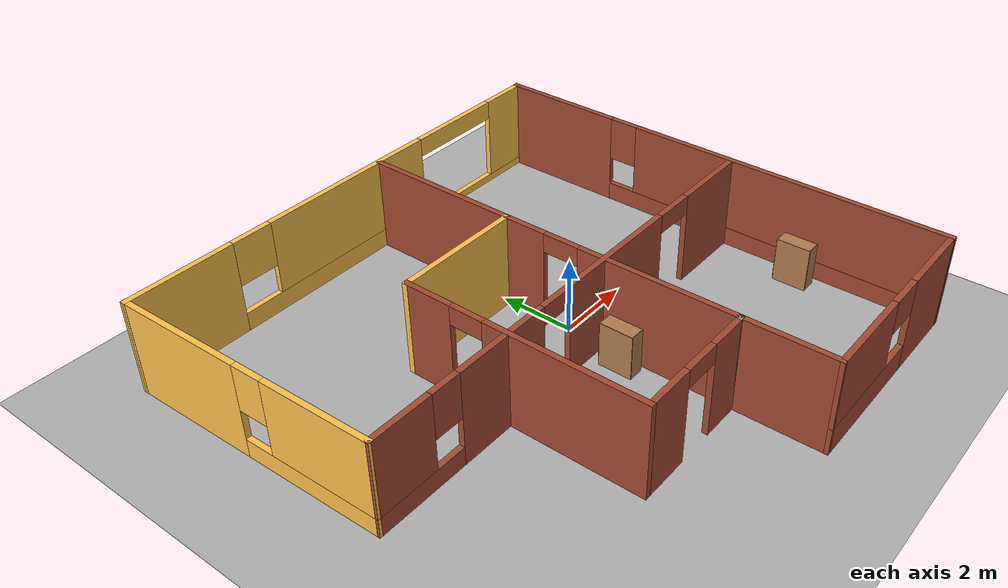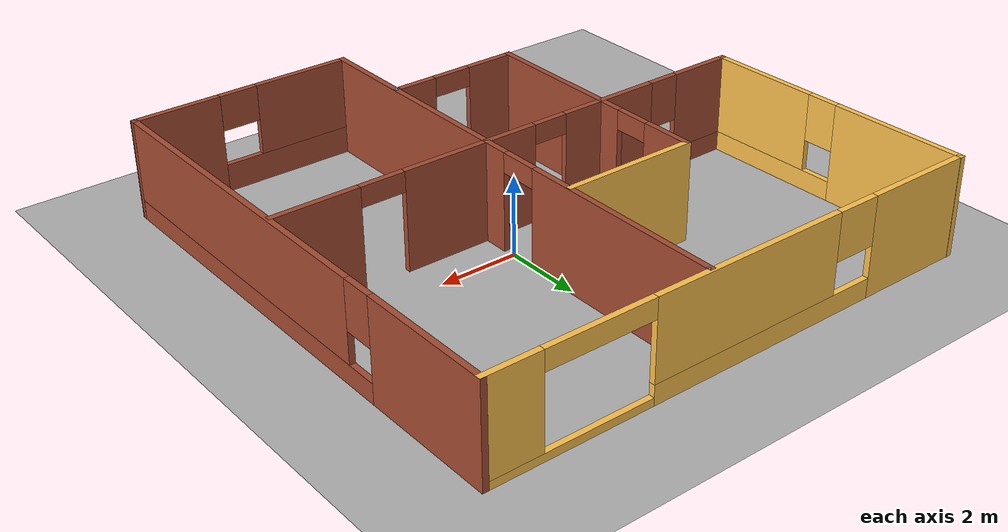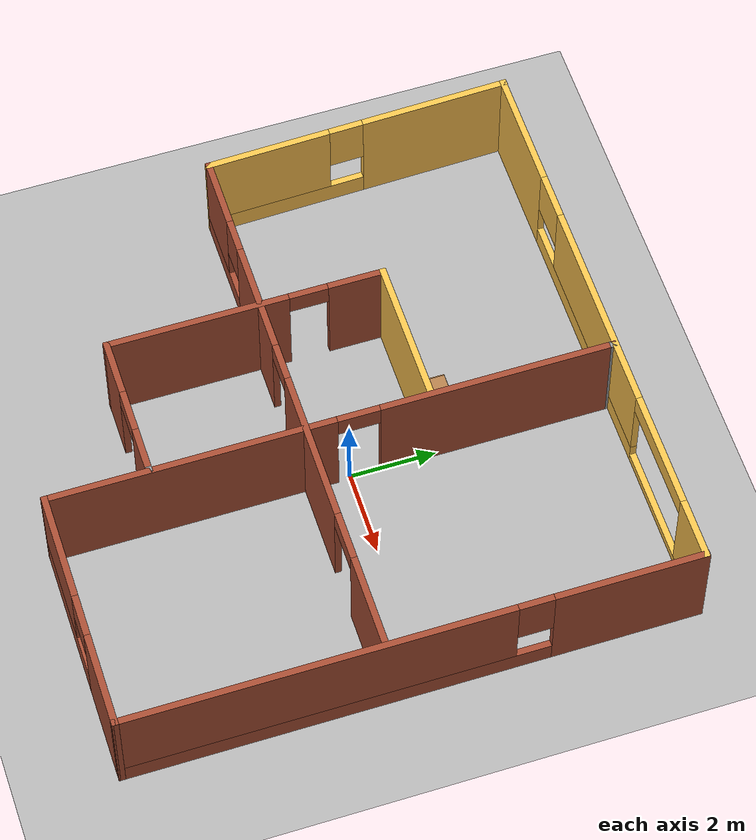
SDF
<sdf version="1.9">
 <world name="default">
  <gravity>0 0 -9.8</gravity>
  <magnetic_field>6e-06 2.3e-05 -4.2e-05</magnetic_field>
  <atmosphere type="adiabatic"/>
  <physics type="ode">
   <max_step_size>0.001</max_step_size>
   <real_time_factor>1</real_time_factor>
   <real_time_update_rate>1000</real_time_update_rate>
  </physics>
  <scene><ambient>0.4 0.4 0.4 1</ambient><background>0.7 0.7 0.7 1</background><shadows>true</shadows></scene>
  <model name="flat">
   <pose>-0.980732 -0.346466 0 0 -0 0</pose>
   <link name="Wall_0">
    <pose>0.000732 6.46037 0 0 -0 0</pose>
    <visual name="Wall_0_Visual_0">
     <pose>-5.1833 0 1.25 0 -0 0</pose>
     <geometry><box><size>2.8834 0.15 2.5</size></box></geometry>
     <material>
      <script><uri>file://media/materials/scripts/gazebo.material</uri><name>Gazebo/Grey</name></script>
      <ambient>1 0.764706 0.305882 1</ambient>
     </material>
     <meta><layer>0</layer></meta>
    </visual>
    <collision name="Wall_0_Collision_0">
     <geometry><box><size>2.8834 0.15 2.5</size></box></geometry>
     <pose>-5.1833 0 1.25 0 -0 0</pose>
    </collision>
    <visual name="Wall_0_Visual_1">
     <pose>-0.642044 0 0.25 0 -0 0</pose>
     <geometry><box><size>6.19911 0.15 0.5</size></box></geometry>
     <material>
      <script><uri>file://media/materials/scripts/gazebo.material</uri><name>Gazebo/Grey</name></script>
      <ambient>1 0.764706 0.305882 1</ambient>
     </material>
     <meta><layer>0</layer></meta>
    </visual>
    <collision name="Wall_0_Collision_1">
     <geometry><box><size>6.19911 0.15 0.5</size></box></geometry>
     <pose>-0.642044 0 0.25 0 -0 0</pose>
    </collision>
    <visual name="Wall_0_Visual_2">
     <pose>4.54125 0 0.1 0 -0 0</pose>
     <geometry><box><size>4.16749 0.15 0.2</size></box></geometry>
     <material>
      <script><uri>file://media/materials/scripts/gazebo.material</uri><name>Gazebo/Grey</name></script>
      <ambient>1 0.764706 0.305882 1</ambient>
     </material>
     <meta><layer>0</layer></meta>
    </visual>
    <collision name="Wall_0_Collision_2">
     <geometry><box><size>4.16749 0.15 0.2</size></box></geometry>
     <pose>4.54125 0 0.1 0 -0 0</pose>
    </collision>
    <visual name="Wall_0_Visual_3">
     <pose>5.90647 0 1.35 0 -0 0</pose>
     <geometry><box><size>1.43706 0.15 2.3</size></box></geometry>
     <material>
      <script><uri>file://media/materials/scripts/gazebo.material</uri><name>Gazebo/Grey</name></script>
      <ambient>1 0.764706 0.305882 1</ambient>
     </material>
     <meta><layer>0</layer></meta>
    </visual>
    <collision name="Wall_0_Collision_3">
     <geometry><box><size>1.43706 0.15 2.3</size></box></geometry>
     <pose>5.90647 0 1.35 0 -0 0</pose>
    </collision>
    <visual name="Wall_0_Visual_4">
     <pose>-0.08987 0 1.5 0 -0 0</pose>
     <geometry><box><size>5.09476 0.15 2</size></box></geometry>
     <material>
      <script><uri>file://media/materials/scripts/gazebo.material</uri><name>Gazebo/Grey</name></script>
      <ambient>1 0.764706 0.305882 1</ambient>
     </material>
     <meta><layer>0</layer></meta>
    </visual>
    <collision name="Wall_0_Collision_4">
     <geometry><box><size>5.09476 0.15 2</size></box></geometry>
     <pose>-0.08987 0 1.5 0 -0 0</pose>
    </collision>
    <visual name="Wall_0_Visual_5">
     <pose>-3.18942 0 1.9 0 -0 0</pose>
     <geometry><box><size>1.10435 0.15 1.2</size></box></geometry>
     <material>
      <script><uri>file://media/materials/scripts/gazebo.material</uri><name>Gazebo/Grey</name></script>
      <ambient>1 0.764706 0.305882 1</ambient>
     </material>
     <meta><layer>0</layer></meta>
    </visual>
    <collision name="Wall_0_Collision_5">
     <geometry><box><size>1.10435 0.15 1.2</size></box></geometry>
     <pose>-3.18942 0 1.9 0 -0 0</pose>
    </collision>
    <visual name="Wall_0_Visual_6">
     <pose>3.82273 0 2.25 0 -0 0</pose>
     <geometry><box><size>2.73043 0.15 0.5</size></box></geometry>
     <material>
      <script><uri>file://media/materials/scripts/gazebo.material</uri><name>Gazebo/Grey</name></script>
      <ambient>1 0.764706 0.305882 1</ambient>
     </material>
     <meta><layer>0</layer></meta>
    </visual>
    <collision name="Wall_0_Collision_6">
     <geometry><box><size>2.73043 0.15 0.5</size></box></geometry>
     <pose>3.82273 0 2.25 0 -0 0</pose>
    </collision>
    <inertial>
     <mass>1</mass>
     <inertia><ixx>1</ixx><ixy>0</ixy><ixz>0</ixz><iyy>1</iyy><iyz>0</iyz><izz>1</izz></inertia>
    </inertial>
   </link>
   <link name="Wall_1">
    <pose>6.55073 -0.000795 0 0 0 -1.5708</pose>
    <visual name="Wall_1_Visual_0">
     <pose>-4.81142 0 1.25 0 -0 0</pose>
     <geometry><box><size>3.46263 0.15 2.5</size></box></geometry>
     <material>
      <script><uri>file://media/materials/scripts/gazebo.material</uri><name>Gazebo/Bricks</name></script>
      <ambient>1 1 1 1</ambient>
     </material>
     <meta><layer>0</layer></meta>
    </visual>
    <collision name="Wall_1_Collision_0">
     <geometry><box><size>3.46263 0.15 2.5</size></box></geometry>
     <pose>-4.81142 0 1.25 0 -0 0</pose>
    </collision>
    <visual name="Wall_1_Visual_1">
     <pose>1.73131 0 0.25 0 -0 0</pose>
     <geometry><box><size>9.62285 0.15 0.5</size></box></geometry>
     <material>
      <script><uri>file://media/materials/scripts/gazebo.material</uri><name>Gazebo/Bricks</name></script>
      <ambient>1 1 1 1</ambient>
     </material>
     <meta><layer>0</layer></meta>
    </visual>
    <collision name="Wall_1_Collision_1">
     <geometry><box><size>9.62285 0.15 0.5</size></box></geometry>
     <pose>1.73131 0 0.25 0 -0 0</pose>
    </collision>
    <visual name="Wall_1_Visual_2">
     <pose>2.13131 0 1.5 0 -0 0</pose>
     <geometry><box><size>8.82285 0.15 2</size></box></geometry>
     <material>
      <script><uri>file://media/materials/scripts/gazebo.material</uri><name>Gazebo/Bricks</name></script>
      <ambient>1 1 1 1</ambient>
     </material>
     <meta><layer>0</layer></meta>
    </visual>
    <collision name="Wall_1_Collision_2">
     <geometry><box><size>8.82285 0.15 2</size></box></geometry>
     <pose>2.13131 0 1.5 0 -0 0</pose>
    </collision>
    <visual name="Wall_1_Visual_3">
     <pose>-2.68011 0 1.9 0 -0 0</pose>
     <geometry><box><size>0.8 0.15 1.2</size></box></geometry>
     <material>
      <script><uri>file://media/materials/scripts/gazebo.material</uri><name>Gazebo/Bricks</name></script>
      <ambient>1 1 1 1</ambient>
     </material>
     <meta><layer>0</layer></meta>
    </visual>
    <collision name="Wall_1_Collision_3">
     <geometry><box><size>0.8 0.15 1.2</size></box></geometry>
     <pose>-2.68011 0 1.9 0 -0 0</pose>
    </collision>
    <inertial>
     <mass>1</mass>
     <inertia><ixx>1</ixx><ixy>0</ixy><ixz>0</ixz><iyy>1</iyy><iyz>0</iyz><izz>1</izz></inertia>
    </inertial>
   </link>
   <link name="Wall_11">
    <collision name="Wall_11_Collision">
     <geometry><box><size>3.5 0.15 2.5</size></box></geometry>
     <pose>0 0 1.25 0 -0 0</pose>
    </collision>
    <visual name="Wall_11_Visual">
     <pose>0 0 1.25 0 -0 0</pose>
     <geometry><box><size>3.5 0.15 2.5</size></box></geometry>
     <material>
      <script><uri>file://media/materials/scripts/gazebo.material</uri><name>Gazebo/Grey</name></script>
      <ambient>1 0.764706 0.305882 1</ambient>
     </material>
     <meta><layer>0</layer></meta>
    </visual>
    <pose>-0.729268 2.22047 0 0 -0 3.14159</pose>
    <inertial>
     <mass>1</mass>
     <inertia><ixx>1</ixx><ixy>0</ixy><ixz>0</ixz><iyy>1</iyy><iyz>0</iyz><izz>1</izz></inertia>
    </inertial>
   </link>
   <link name="Wall_12">
    <pose>-2.40427 -0.954534 0 0 0 -1.5708</pose>
    <visual name="Wall_12_Visual_0">
     <pose>-2.56742 0 1.25 0 -0 0</pose>
     <geometry><box><size>1.36516 0.15 2.5</size></box></geometry>
     <material>
      <script><uri>file://media/materials/scripts/gazebo.material</uri><name>Gazebo/Bricks</name></script>
      <ambient>1 1 1 1</ambient>
     </material>
     <meta><layer>0</layer></meta>
    </visual>
    <collision name="Wall_12_Collision_0">
     <geometry><box><size>1.36516 0.15 2.5</size></box></geometry>
     <pose>-2.56742 0 1.25 0 -0 0</pose>
    </collision>
    <visual name="Wall_12_Visual_1">
     <pose>1.13258 0 1.25 0 -0 0</pose>
     <geometry><box><size>4.23484 0.15 2.5</size></box></geometry>
     <material>
      <script><uri>file://media/materials/scripts/gazebo.material</uri><name>Gazebo/Bricks</name></script>
      <ambient>1 1 1 1</ambient>
     </material>
     <meta><layer>0</layer></meta>
    </visual>
    <collision name="Wall_12_Collision_1">
     <geometry><box><size>4.23484 0.15 2.5</size></box></geometry>
     <pose>1.13258 0 1.25 0 -0 0</pose>
    </collision>
    <visual name="Wall_12_Visual_2">
     <pose>-1.43484 0 2.25 0 -0 0</pose>
     <geometry><box><size>0.9 0.15 0.5</size></box></geometry>
     <material>
      <script><uri>file://media/materials/scripts/gazebo.material</uri><name>Gazebo/Bricks</name></script>
      <ambient>1 1 1 1</ambient>
     </material>
     <meta><layer>0</layer></meta>
    </visual>
    <collision name="Wall_12_Collision_2">
     <geometry><box><size>0.9 0.15 0.5</size></box></geometry>
     <pose>-1.43484 0 2.25 0 -0 0</pose>
    </collision>
    <inertial>
     <mass>1</mass>
     <inertia><ixx>1</ixx><ixy>0</ixy><ixz>0</ixz><iyy>1</iyy><iyz>0</iyz><izz>1</izz></inertia>
    </inertial>
   </link>
   <link name="Wall_13">
    <pose>-0.729268 -4.12953 0 0 -0 0</pose>
    <visual name="Wall_13_Visual_0">
     <pose>-1.07574 0 1.25 0 -0 0</pose>
     <geometry><box><size>1.34852 0.15 2.5</size></box></geometry>
     <material>
      <script><uri>file://media/materials/scripts/gazebo.material</uri><name>Gazebo/Bricks</name></script>
      <ambient>1 1 1 1</ambient>
     </material>
     <meta><layer>0</layer></meta>
    </visual>
    <collision name="Wall_13_Collision_0">
     <geometry><box><size>1.34852 0.15 2.5</size></box></geometry>
     <pose>-1.07574 0 1.25 0 -0 0</pose>
    </collision>
    <visual name="Wall_13_Visual_1">
     <pose>1.17716 0 1.25 0 -0 0</pose>
     <geometry><box><size>1.14568 0.15 2.5</size></box></geometry>
     <material>
      <script><uri>file://media/materials/scripts/gazebo.material</uri><name>Gazebo/Bricks</name></script>
      <ambient>1 1 1 1</ambient>
     </material>
     <meta><layer>0</layer></meta>
    </visual>
    <collision name="Wall_13_Collision_1">
     <geometry><box><size>1.14568 0.15 2.5</size></box></geometry>
     <pose>1.17716 0 1.25 0 -0 0</pose>
    </collision>
    <visual name="Wall_13_Visual_2">
     <pose>0.10142 0 2.25 0 -0 0</pose>
     <geometry><box><size>1.0058 0.15 0.5</size></box></geometry>
     <material>
      <script><uri>file://media/materials/scripts/gazebo.material</uri><name>Gazebo/Bricks</name></script>
      <ambient>1 1 1 1</ambient>
     </material>
     <meta><layer>0</layer></meta>
    </visual>
    <collision name="Wall_13_Collision_2">
     <geometry><box><size>1.0058 0.15 0.5</size></box></geometry>
     <pose>0.10142 0 2.25 0 -0 0</pose>
    </collision>
    <inertial>
     <mass>1</mass>
     <inertia><ixx>1</ixx><ixy>0</ixy><ixz>0</ixz><iyy>1</iyy><iyz>0</iyz><izz>1</izz></inertia>
    </inertial>
   </link>
   <link name="Wall_14">
    <collision name="Wall_14_Collision">
     <geometry><box><size>0.15 0.15 2.5</size></box></geometry>
     <pose>0 0 1.25 0 -0 0</pose>
    </collision>
    <visual name="Wall_14_Visual">
     <pose>0 0 1.25 0 -0 0</pose>
     <geometry><box><size>0.15 0.15 2.5</size></box></geometry>
     <material>
      <script><uri>file://media/materials/scripts/gazebo.material</uri><name>Gazebo/Grey</name></script>
      <ambient>1 1 1 1</ambient>
     </material>
     <meta><layer>0</layer></meta>
    </visual>
    <pose>0.945732 -4.12953 0 0 -0 0</pose>
    <inertial>
     <mass>1</mass>
     <inertia><ixx>1</ixx><ixy>0</ixy><ixz>0</ixz><iyy>1</iyy><iyz>0</iyz><izz>1</izz></inertia>
    </inertial>
   </link>
   <link name="Wall_2">
    <pose>3.76223 -6.45703 0 0 -0 3.13747</pose>
    <visual name="Wall_2_Visual_0">
     <pose>-1.75694 0 1.25 0 -0 0</pose>
     <geometry><box><size>2.21342 0.15 2.5</size></box></geometry>
     <material>
      <script><uri>file://media/materials/scripts/gazebo.material</uri><name>Gazebo/Bricks</name></script>
      <ambient>1 1 1 1</ambient>
     </material>
     <meta><layer>0</layer></meta>
    </visual>
    <collision name="Wall_2_Collision_0">
     <geometry><box><size>2.21342 0.15 2.5</size></box></geometry>
     <pose>-1.75694 0 1.25 0 -0 0</pose>
    </collision>
    <visual name="Wall_2_Visual_1">
     <pose>1.10671 0 0.35 0 -0 0</pose>
     <geometry><box><size>3.51388 0.15 0.7</size></box></geometry>
     <material>
      <script><uri>file://media/materials/scripts/gazebo.material</uri><name>Gazebo/Bricks</name></script>
      <ambient>1 1 1 1</ambient>
     </material>
     <meta><layer>0</layer></meta>
    </visual>
    <collision name="Wall_2_Collision_1">
     <geometry><box><size>3.51388 0.15 0.7</size></box></geometry>
     <pose>1.10671 0 0.35 0 -0 0</pose>
    </collision>
    <visual name="Wall_2_Visual_2">
     <pose>1.59671 0 1.6 0 -0 0</pose>
     <geometry><box><size>2.53388 0.15 1.8</size></box></geometry>
     <material>
      <script><uri>file://media/materials/scripts/gazebo.material</uri><name>Gazebo/Bricks</name></script>
      <ambient>1 1 1 1</ambient>
     </material>
     <meta><layer>0</layer></meta>
    </visual>
    <collision name="Wall_2_Collision_2">
     <geometry><box><size>2.53388 0.15 1.8</size></box></geometry>
     <pose>1.59671 0 1.6 0 -0 0</pose>
    </collision>
    <visual name="Wall_2_Visual_3">
     <pose>-0.160227 0 2.05 0 -0 0</pose>
     <geometry><box><size>0.98 0.15 0.9</size></box></geometry>
     <material>
      <script><uri>file://media/materials/scripts/gazebo.material</uri><name>Gazebo/Bricks</name></script>
      <ambient>1 1 1 1</ambient>
     </material>
     <meta><layer>0</layer></meta>
    </visual>
    <collision name="Wall_2_Collision_3">
     <geometry><box><size>0.98 0.15 0.9</size></box></geometry>
     <pose>-0.160227 0 2.05 0 -0 0</pose>
    </collision>
    <inertial>
     <mass>1</mass>
     <inertia><ixx>1</ixx><ixy>0</ixy><ixz>0</ixz><iyy>1</iyy><iyz>0</iyz><izz>1</izz></inertia>
    </inertial>
   </link>
   <link name="Wall_3">
    <pose>0.973732 -0.020534 0 0 -0 1.5708</pose>
    <visual name="Wall_3_Visual_0">
     <pose>-3.20115 0 1.25 0 -0 0</pose>
     <geometry><box><size>6.59769 0.15 2.5</size></box></geometry>
     <material>
      <script><uri>file://media/materials/scripts/gazebo.material</uri><name>Gazebo/Bricks</name></script>
      <ambient>1 1 1 1</ambient>
     </material>
     <meta><layer>0</layer></meta>
    </visual>
    <collision name="Wall_3_Collision_0">
     <geometry><box><size>6.59769 0.15 2.5</size></box></geometry>
     <pose>-3.20115 0 1.25 0 -0 0</pose>
    </collision>
    <visual name="Wall_3_Visual_1">
     <pose>3.78687 0 1.25 0 -0 0</pose>
     <geometry><box><size>5.42626 0.15 2.5</size></box></geometry>
     <material>
      <script><uri>file://media/materials/scripts/gazebo.material</uri><name>Gazebo/Bricks</name></script>
      <ambient>1 1 1 1</ambient>
     </material>
     <meta><layer>0</layer></meta>
    </visual>
    <collision name="Wall_3_Collision_1">
     <geometry><box><size>5.42626 0.15 2.5</size></box></geometry>
     <pose>3.78687 0 1.25 0 -0 0</pose>
    </collision>
    <visual name="Wall_3_Visual_2">
     <pose>0.585717 0 2.25 0 -0 0</pose>
     <geometry><box><size>0.976044 0.15 0.5</size></box></geometry>
     <material>
      <script><uri>file://media/materials/scripts/gazebo.material</uri><name>Gazebo/Bricks</name></script>
      <ambient>1 1 1 1</ambient>
     </material>
     <meta><layer>0</layer></meta>
    </visual>
    <collision name="Wall_3_Collision_2">
     <geometry><box><size>0.976044 0.15 0.5</size></box></geometry>
     <pose>0.585717 0 2.25 0 -0 0</pose>
    </collision>
    <inertial>
     <mass>1</mass>
     <inertia><ixx>1</ixx><ixy>0</ixy><ixz>0</ixz><iyy>1</iyy><iyz>0</iyz><izz>1</izz></inertia>
    </inertial>
   </link>
   <link name="Wall_4">
    <collision name="Wall_4_Collision">
     <geometry><box><size>0.15 0.15 2.5</size></box></geometry>
     <pose>0 0 1.25 0 -0 0</pose>
    </collision>
    <visual name="Wall_4_Visual">
     <pose>0 0 1.25 0 -0 0</pose>
     <geometry><box><size>0.15 0.15 2.5</size></box></geometry>
     <material>
      <script><uri>file://media/materials/scripts/gazebo.material</uri><name>Gazebo/Grey</name></script>
      <ambient>1 1 1 1</ambient>
     </material>
     <meta><layer>0</layer></meta>
    </visual>
    <pose>0.973732 6.40447 0 0 -0 0</pose>
    <inertial>
     <mass>1</mass>
     <inertia><ixx>1</ixx><ixy>0</ixy><ixz>0</ixz><iyy>1</iyy><iyz>0</iyz><izz>1</izz></inertia>
    </inertial>
   </link>
   <link name="Wall_6">
    <pose>0.057732 -0.624534 0 0 -0 3.14159</pose>
    <visual name="Wall_6_Visual_0">
     <pose>-5.39693 0 1.25 0 -0 0</pose>
     <geometry><box><size>2.20614 0.15 2.5</size></box></geometry>
     <material>
      <script><uri>file://media/materials/scripts/gazebo.material</uri><name>Gazebo/Bricks</name></script>
      <ambient>0.760784 0.662745 0.627451 1</ambient>
     </material>
     <meta><layer>0</layer></meta>
    </visual>
    <collision name="Wall_6_Collision_0">
     <geometry><box><size>2.20614 0.15 2.5</size></box></geometry>
     <pose>-5.39693 0 1.25 0 -0 0</pose>
    </collision>
    <visual name="Wall_6_Visual_1">
     <pose>-1.36863 0 1.25 0 -0 0</pose>
     <geometry><box><size>3.59419 0.15 2.5</size></box></geometry>
     <material>
      <script><uri>file://media/materials/scripts/gazebo.material</uri><name>Gazebo/Bricks</name></script>
      <ambient>0.760784 0.662745 0.627451 1</ambient>
     </material>
     <meta><layer>0</layer></meta>
    </visual>
    <collision name="Wall_6_Collision_1">
     <geometry><box><size>3.59419 0.15 2.5</size></box></geometry>
     <pose>-1.36863 0 1.25 0 -0 0</pose>
    </collision>
    <visual name="Wall_6_Visual_2">
     <pose>2.6662 0 1.25 0 -0 0</pose>
     <geometry><box><size>2.67548 0.15 2.5</size></box></geometry>
     <material>
      <script><uri>file://media/materials/scripts/gazebo.material</uri><name>Gazebo/Bricks</name></script>
      <ambient>0.760784 0.662745 0.627451 1</ambient>
     </material>
     <meta><layer>0</layer></meta>
    </visual>
    <collision name="Wall_6_Collision_2">
     <geometry><box><size>2.67548 0.15 2.5</size></box></geometry>
     <pose>2.6662 0 1.25 0 -0 0</pose>
    </collision>
    <visual name="Wall_6_Visual_3">
     <pose>5.25197 0 0.25 0 -0 0</pose>
     <geometry><box><size>2.49606 0.15 0.5</size></box></geometry>
     <material>
      <script><uri>file://media/materials/scripts/gazebo.material</uri><name>Gazebo/Bricks</name></script>
      <ambient>0.760784 0.662745 0.627451 1</ambient>
     </material>
     <meta><layer>0</layer></meta>
    </visual>
    <collision name="Wall_6_Collision_3">
     <geometry><box><size>2.49606 0.15 0.5</size></box></geometry>
     <pose>5.25197 0 0.25 0 -0 0</pose>
    </collision>
    <visual name="Wall_6_Visual_4">
     <pose>5.65197 0 1.5 0 -0 0</pose>
     <geometry><box><size>1.69606 0.15 2</size></box></geometry>
     <material>
      <script><uri>file://media/materials/scripts/gazebo.material</uri><name>Gazebo/Bricks</name></script>
      <ambient>0.760784 0.662745 0.627451 1</ambient>
     </material>
     <meta><layer>0</layer></meta>
    </visual>
    <collision name="Wall_6_Collision_4">
     <geometry><box><size>1.69606 0.15 2</size></box></geometry>
     <pose>5.65197 0 1.5 0 -0 0</pose>
    </collision>
    <visual name="Wall_6_Visual_5">
     <pose>4.40394 0 1.9 0 -0 0</pose>
     <geometry><box><size>0.8 0.15 1.2</size></box></geometry>
     <material>
      <script><uri>file://media/materials/scripts/gazebo.material</uri><name>Gazebo/Bricks</name></script>
      <ambient>0.760784 0.662745 0.627451 1</ambient>
     </material>
     <meta><layer>0</layer></meta>
    </visual>
    <collision name="Wall_6_Collision_5">
     <geometry><box><size>0.8 0.15 1.2</size></box></geometry>
     <pose>4.40394 0 1.9 0 -0 0</pose>
    </collision>
    <visual name="Wall_6_Visual_6">
     <pose>-3.72979 0 2.25 0 -0 0</pose>
     <geometry><box><size>1.12813 0.15 0.5</size></box></geometry>
     <material>
      <script><uri>file://media/materials/scripts/gazebo.material</uri><name>Gazebo/Bricks</name></script>
      <ambient>0.760784 0.662745 0.627451 1</ambient>
     </material>
     <meta><layer>0</layer></meta>
    </visual>
    <collision name="Wall_6_Collision_6">
     <geometry><box><size>1.12813 0.15 0.5</size></box></geometry>
     <pose>-3.72979 0 2.25 0 -0 0</pose>
    </collision>
    <visual name="Wall_6_Visual_7">
     <pose>0.87846 0 2.25 0 -0 0</pose>
     <geometry><box><size>0.9 0.15 0.5</size></box></geometry>
     <material>
      <script><uri>file://media/materials/scripts/gazebo.material</uri><name>Gazebo/Bricks</name></script>
      <ambient>0.760784 0.662745 0.627451 1</ambient>
     </material>
     <meta><layer>0</layer></meta>
    </visual>
    <collision name="Wall_6_Collision_7">
     <geometry><box><size>0.9 0.15 0.5</size></box></geometry>
     <pose>0.87846 0 2.25 0 -0 0</pose>
    </collision>
    <inertial>
     <mass>1</mass>
     <inertia><ixx>1</ixx><ixy>0</ixy><ixz>0</ixz><iyy>1</iyy><iyz>0</iyz><izz>1</izz></inertia>
    </inertial>
   </link>
   <link name="Wall_9">
    <pose>-6.45827 2.92121 0 0 0 -1.54514</pose>
    <visual name="Wall_9_Visual_0">
     <pose>-1.8675 0 1.25 0 -0 0</pose>
     <geometry><box><size>3.50881 0.15 2.5</size></box></geometry>
     <material>
      <script><uri>file://media/materials/scripts/gazebo.material</uri><name>Gazebo/Grey</name></script>
      <ambient>1 0.764706 0.305882 1</ambient>
     </material>
     <meta><layer>0</layer></meta>
    </visual>
    <collision name="Wall_9_Collision_0">
     <geometry><box><size>3.50881 0.15 2.5</size></box></geometry>
     <pose>-1.8675 0 1.25 0 -0 0</pose>
    </collision>
    <visual name="Wall_9_Visual_1">
     <pose>1.7544 0 0.25 0 -0 0</pose>
     <geometry><box><size>3.73501 0.15 0.5</size></box></geometry>
     <material>
      <script><uri>file://media/materials/scripts/gazebo.material</uri><name>Gazebo/Grey</name></script>
      <ambient>1 0.764706 0.305882 1</ambient>
     </material>
     <meta><layer>0</layer></meta>
    </visual>
    <collision name="Wall_9_Collision_1">
     <geometry><box><size>3.73501 0.15 0.5</size></box></geometry>
     <pose>1.7544 0 0.25 0 -0 0</pose>
    </collision>
    <visual name="Wall_9_Visual_2">
     <pose>2.1544 0 1.5 0 -0 0</pose>
     <geometry><box><size>2.93501 0.15 2</size></box></geometry>
     <material>
      <script><uri>file://media/materials/scripts/gazebo.material</uri><name>Gazebo/Grey</name></script>
      <ambient>1 0.764706 0.305882 1</ambient>
     </material>
     <meta><layer>0</layer></meta>
    </visual>
    <collision name="Wall_9_Collision_2">
     <geometry><box><size>2.93501 0.15 2</size></box></geometry>
     <pose>2.1544 0 1.5 0 -0 0</pose>
    </collision>
    <visual name="Wall_9_Visual_3">
     <pose>0.286899 0 1.9 0 -0 0</pose>
     <geometry><box><size>0.8 0.15 1.2</size></box></geometry>
     <material>
      <script><uri>file://media/materials/scripts/gazebo.material</uri><name>Gazebo/Grey</name></script>
      <ambient>1 0.764706 0.305882 1</ambient>
     </material>
     <meta><layer>0</layer></meta>
    </visual>
    <collision name="Wall_9_Collision_3">
     <geometry><box><size>0.8 0.15 1.2</size></box></geometry>
     <pose>0.286899 0 1.9 0 -0 0</pose>
    </collision>
    <inertial>
     <mass>1</mass>
     <inertia><ixx>1</ixx><ixy>0</ixy><ixz>0</ixz><iyy>1</iyy><iyz>0</iyz><izz>1</izz></inertia>
    </inertial>
   </link>
   <static>true</static>
  </model>
  <model name="Bookshelf">
   <static>true</static>
   <link name="link">
    <inertial>
     <mass>1</mass>
     <inertia><ixx>1</ixx><ixy>0</ixy><ixz>0</ixz><iyy>1</iyy><iyz>0</iyz><izz>1</izz></inertia>
    </inertial>
    <collision name="back">
     <pose>0 0.005 0.6 0 0 0</pose>
     <geometry><box><size>0.9 0.01 1.2</size></box></geometry>
    </collision>
    <visual name="visual1">
     <pose>0 0.005 0.6 0 0 0</pose>
     <geometry><box><size>0.9 0.01 1.2</size></box></geometry>
     <material>
      <diffuse>1 1 1 1</diffuse>
      <script><uri>file://media/materials/scripts/gazebo.material</uri><name>Gazebo/Wood</name></script>
      <pbr>
       <metal>
        <albedo_map>https://fuel.gazebosim.org/1.0/openrobotics/models/bookshelf/4/files/bookshelf_diffuse.jpg</albedo_map>
       </metal>
      </pbr>
     </material>
    </visual>
    <collision name="left_side">
     <pose>0.45 -0.195 0.6 0 0 0</pose>
     <geometry><box><size>0.02 0.4 1.2</size></box></geometry>
    </collision>
    <visual name="visual2">
     <pose>0.45 -0.195 0.6 0 0 0</pose>
     <geometry><box><size>0.02 0.4 1.2</size></box></geometry>
     <material>
      <diffuse>1 1 1 1</diffuse>
      <script><uri>file://media/materials/scripts/gazebo.material</uri><name>Gazebo/Wood</name></script>
      <pbr>
       <metal>
        <albedo_map>https://fuel.gazebosim.org/1.0/openrobotics/models/bookshelf/4/files/bookshelf_diffuse.jpg</albedo_map>
       </metal>
      </pbr>
     </material>
    </visual>
    <collision name="right_side">
     <pose>-0.45 -0.195 0.6 0 0 0</pose>
     <geometry><box><size>0.02 0.4 1.2</size></box></geometry>
    </collision>
    <visual name="visual3">
     <pose>-0.45 -0.195 0.6 0 0 0</pose>
     <geometry><box><size>0.02 0.4 1.2</size></box></geometry>
     <material>
      <diffuse>1 1 1 1</diffuse>
      <script><uri>file://media/materials/scripts/gazebo.material</uri><name>Gazebo/Wood</name></script>
      <pbr>
       <metal>
        <albedo_map>https://fuel.gazebosim.org/1.0/openrobotics/models/bookshelf/4/files/bookshelf_diffuse.jpg</albedo_map>
       </metal>
      </pbr>
     </material>
    </visual>
    <collision name="bottom">
     <pose>0 -0.195 0.03 0 0 0</pose>
     <geometry><box><size>0.88 0.4 0.06</size></box></geometry>
    </collision>
    <visual name="visual4">
     <pose>0 -0.195 0.03 0 0 0</pose>
     <geometry><box><size>0.88 0.4 0.06</size></box></geometry>
     <material>
      <diffuse>1 1 1 1</diffuse>
      <script><uri>file://media/materials/scripts/gazebo.material</uri><name>Gazebo/Wood</name></script>
      <pbr>
       <metal>
        <albedo_map>https://fuel.gazebosim.org/1.0/openrobotics/models/bookshelf/4/files/bookshelf_diffuse.jpg</albedo_map>
       </metal>
      </pbr>
     </material>
    </visual>
    <collision name="top">
     <pose>0 -0.195 1.19 0 0 0</pose>
     <geometry><box><size>0.88 0.4 0.02</size></box></geometry>
    </collision>
    <visual name="visual5">
     <pose>0 -0.195 1.19 0 0 0</pose>
     <geometry><box><size>0.88 0.4 0.02</size></box></geometry>
     <material>
      <diffuse>1 1 1 1</diffuse>
      <script><uri>file://media/materials/scripts/gazebo.material</uri><name>Gazebo/Wood</name></script>
      <pbr>
       <metal>
        <albedo_map>https://fuel.gazebosim.org/1.0/openrobotics/models/bookshelf/4/files/bookshelf_diffuse.jpg</albedo_map>
       </metal>
      </pbr>
     </material>
    </visual>
    <collision name="low_shelf">
     <pose>0 -0.195 0.43 0 0 0</pose>
     <geometry><box><size>0.88 0.4 0.02</size></box></geometry>
    </collision>
    <visual name="visual6">
     <pose>0 -0.195 0.43 0 0 0</pose>
     <geometry><box><size>0.88 0.4 0.02</size></box></geometry>
     <material>
      <diffuse>1 1 1 1</diffuse>
      <script><uri>file://media/materials/scripts/gazebo.material</uri><name>Gazebo/Wood</name></script>
      <pbr>
       <metal>
        <albedo_map>https://fuel.gazebosim.org/1.0/openrobotics/models/bookshelf/4/files/bookshelf_diffuse.jpg</albedo_map>
       </metal>
      </pbr>
     </material>
    </visual>
    <collision name="high_shelf">
     <pose>0 -0.195 0.8 0 0 0</pose>
     <geometry><box><size>0.88 0.4 0.02</size></box></geometry>
    </collision>
    <visual name="visual7">
     <pose>0 -0.195 0.8 0 0 0</pose>
     <geometry><box><size>0.88 0.4 0.02</size></box></geometry>
     <material>
      <diffuse>1 1 1 1</diffuse>
      <script><uri>file://media/materials/scripts/gazebo.material</uri><name>Gazebo/Wood</name></script>
      <pbr>
       <metal>
        <albedo_map>https://fuel.gazebosim.org/1.0/openrobotics/models/bookshelf/4/files/bookshelf_diffuse.jpg</albedo_map>
       </metal>
      </pbr>
     </material>
    </visual>
   </link>
   <pose>-0.615323 -1.77008 0 0 -0 1.5708</pose>
  </model>
  <model name="Bookshelf_0">
   <static>true</static>
   <link name="link">
    <inertial>
     <mass>1</mass>
     <inertia><ixx>1</ixx><ixy>0</ixy><ixz>0</ixz><iyy>1</iyy><iyz>0</iyz><izz>1</izz></inertia>
    </inertial>
    <collision name="back">
     <pose>0 0.005 0.6 0 0 0</pose>
     <geometry><box><size>0.9 0.01 1.2</size></box></geometry>
    </collision>
    <visual name="visual1">
     <pose>0 0.005 0.6 0 0 0</pose>
     <geometry><box><size>0.9 0.01 1.2</size></box></geometry>
     <material>
      <diffuse>1 1 1 1</diffuse>
      <script><uri>file://media/materials/scripts/gazebo.material</uri><name>Gazebo/Wood</name></script>
      <pbr>
       <metal>
        <albedo_map>https://fuel.gazebosim.org/1.0/openrobotics/models/bookshelf/4/files/bookshelf_diffuse.jpg</albedo_map>
       </metal>
      </pbr>
     </material>
    </visual>
    <collision name="left_side">
     <pose>0.45 -0.195 0.6 0 0 0</pose>
     <geometry><box><size>0.02 0.4 1.2</size></box></geometry>
    </collision>
    <visual name="visual2">
     <pose>0.45 -0.195 0.6 0 0 0</pose>
     <geometry><box><size>0.02 0.4 1.2</size></box></geometry>
     <material>
      <diffuse>1 1 1 1</diffuse>
      <script><uri>file://media/materials/scripts/gazebo.material</uri><name>Gazebo/Wood</name></script>
      <pbr>
       <metal>
        <albedo_map>https://fuel.gazebosim.org/1.0/openrobotics/models/bookshelf/4/files/bookshelf_diffuse.jpg</albedo_map>
       </metal>
      </pbr>
     </material>
    </visual>
    <collision name="right_side">
     <pose>-0.45 -0.195 0.6 0 0 0</pose>
     <geometry><box><size>0.02 0.4 1.2</size></box></geometry>
    </collision>
    <visual name="visual3">
     <pose>-0.45 -0.195 0.6 0 0 0</pose>
     <geometry><box><size>0.02 0.4 1.2</size></box></geometry>
     <material>
      <diffuse>1 1 1 1</diffuse>
      <script><uri>file://media/materials/scripts/gazebo.material</uri><name>Gazebo/Wood</name></script>
      <pbr>
       <metal>
        <albedo_map>https://fuel.gazebosim.org/1.0/openrobotics/models/bookshelf/4/files/bookshelf_diffuse.jpg</albedo_map>
       </metal>
      </pbr>
     </material>
    </visual>
    <collision name="bottom">
     <pose>0 -0.195 0.03 0 0 0</pose>
     <geometry><box><size>0.88 0.4 0.06</size></box></geometry>
    </collision>
    <visual name="visual4">
     <pose>0 -0.195 0.03 0 0 0</pose>
     <geometry><box><size>0.88 0.4 0.06</size></box></geometry>
     <material>
      <diffuse>1 1 1 1</diffuse>
      <script><uri>file://media/materials/scripts/gazebo.material</uri><name>Gazebo/Wood</name></script>
      <pbr>
       <metal>
        <albedo_map>https://fuel.gazebosim.org/1.0/openrobotics/models/bookshelf/4/files/bookshelf_diffuse.jpg</albedo_map>
       </metal>
      </pbr>
     </material>
    </visual>
    <collision name="top">
     <pose>0 -0.195 1.19 0 0 0</pose>
     <geometry><box><size>0.88 0.4 0.02</size></box></geometry>
    </collision>
    <visual name="visual5">
     <pose>0 -0.195 1.19 0 0 0</pose>
     <geometry><box><size>0.88 0.4 0.02</size></box></geometry>
     <material>
      <diffuse>1 1 1 1</diffuse>
      <script><uri>file://media/materials/scripts/gazebo.material</uri><name>Gazebo/Wood</name></script>
      <pbr>
       <metal>
        <albedo_map>https://fuel.gazebosim.org/1.0/openrobotics/models/bookshelf/4/files/bookshelf_diffuse.jpg</albedo_map>
       </metal>
      </pbr>
     </material>
    </visual>
    <collision name="low_shelf">
     <pose>0 -0.195 0.43 0 0 0</pose>
     <geometry><box><size>0.88 0.4 0.02</size></box></geometry>
    </collision>
    <visual name="visual6">
     <pose>0 -0.195 0.43 0 0 0</pose>
     <geometry><box><size>0.88 0.4 0.02</size></box></geometry>
     <material>
      <diffuse>1 1 1 1</diffuse>
      <script><uri>file://media/materials/scripts/gazebo.material</uri><name>Gazebo/Wood</name></script>
      <pbr>
       <metal>
        <albedo_map>https://fuel.gazebosim.org/1.0/openrobotics/models/bookshelf/4/files/bookshelf_diffuse.jpg</albedo_map>
       </metal>
      </pbr>
     </material>
    </visual>
    <collision name="high_shelf">
     <pose>0 -0.195 0.8 0 0 0</pose>
     <geometry><box><size>0.88 0.4 0.02</size></box></geometry>
    </collision>
    <visual name="visual7">
     <pose>0 -0.195 0.8 0 0 0</pose>
     <geometry><box><size>0.88 0.4 0.02</size></box></geometry>
     <material>
      <diffuse>1 1 1 1</diffuse>
      <script><uri>file://media/materials/scripts/gazebo.material</uri><name>Gazebo/Wood</name></script>
      <pbr>
       <metal>
        <albedo_map>https://fuel.gazebosim.org/1.0/openrobotics/models/bookshelf/4/files/bookshelf_diffuse.jpg</albedo_map>
       </metal>
      </pbr>
     </material>
    </visual>
   </link>
   <pose>-0.727723 2.56989 0 0 -0 0</pose>
  </model>
  <model name="Bookshelf_1">
   <static>true</static>
   <link name="link">
    <inertial>
     <mass>1</mass>
     <inertia><ixx>1</ixx><ixy>0</ixy><ixz>0</ixz><iyy>1</iyy><iyz>0</iyz><izz>1</izz></inertia>
    </inertial>
    <collision name="back">
     <pose>0 0.005 0.6 0 0 0</pose>
     <geometry><box><size>0.9 0.01 1.2</size></box></geometry>
    </collision>
    <visual name="visual1">
     <pose>0 0.005 0.6 0 0 0</pose>
     <geometry><box><size>0.9 0.01 1.2</size></box></geometry>
     <material>
      <diffuse>1 1 1 1</diffuse>
      <script><uri>file://media/materials/scripts/gazebo.material</uri><name>Gazebo/Wood</name></script>
      <pbr>
       <metal>
        <albedo_map>https://fuel.gazebosim.org/1.0/openrobotics/models/bookshelf/4/files/bookshelf_diffuse.jpg</albedo_map>
       </metal>
      </pbr>
     </material>
    </visual>
    <collision name="left_side">
     <pose>0.45 -0.195 0.6 0 0 0</pose>
     <geometry><box><size>0.02 0.4 1.2</size></box></geometry>
    </collision>
    <visual name="visual2">
     <pose>0.45 -0.195 0.6 0 0 0</pose>
     <geometry><box><size>0.02 0.4 1.2</size></box></geometry>
     <material>
      <diffuse>1 1 1 1</diffuse>
      <script><uri>file://media/materials/scripts/gazebo.material</uri><name>Gazebo/Wood</name></script>
      <pbr>
       <metal>
        <albedo_map>https://fuel.gazebosim.org/1.0/openrobotics/models/bookshelf/4/files/bookshelf_diffuse.jpg</albedo_map>
       </metal>
      </pbr>
     </material>
    </visual>
    <collision name="right_side">
     <pose>-0.45 -0.195 0.6 0 0 0</pose>
     <geometry><box><size>0.02 0.4 1.2</size></box></geometry>
    </collision>
    <visual name="visual3">
     <pose>-0.45 -0.195 0.6 0 0 0</pose>
     <geometry><box><size>0.02 0.4 1.2</size></box></geometry>
     <material>
      <diffuse>1 1 1 1</diffuse>
      <script><uri>file://media/materials/scripts/gazebo.material</uri><name>Gazebo/Wood</name></script>
      <pbr>
       <metal>
        <albedo_map>https://fuel.gazebosim.org/1.0/openrobotics/models/bookshelf/4/files/bookshelf_diffuse.jpg</albedo_map>
       </metal>
      </pbr>
     </material>
    </visual>
    <collision name="bottom">
     <pose>0 -0.195 0.03 0 0 0</pose>
     <geometry><box><size>0.88 0.4 0.06</size></box></geometry>
    </collision>
    <visual name="visual4">
     <pose>0 -0.195 0.03 0 0 0</pose>
     <geometry><box><size>0.88 0.4 0.06</size></box></geometry>
     <material>
      <diffuse>1 1 1 1</diffuse>
      <script><uri>file://media/materials/scripts/gazebo.material</uri><name>Gazebo/Wood</name></script>
      <pbr>
       <metal>
        <albedo_map>https://fuel.gazebosim.org/1.0/openrobotics/models/bookshelf/4/files/bookshelf_diffuse.jpg</albedo_map>
       </metal>
      </pbr>
     </material>
    </visual>
    <collision name="top">
     <pose>0 -0.195 1.19 0 0 0</pose>
     <geometry><box><size>0.88 0.4 0.02</size></box></geometry>
    </collision>
    <visual name="visual5">
     <pose>0 -0.195 1.19 0 0 0</pose>
     <geometry><box><size>0.88 0.4 0.02</size></box></geometry>
     <material>
      <diffuse>1 1 1 1</diffuse>
      <script><uri>file://media/materials/scripts/gazebo.material</uri><name>Gazebo/Wood</name></script>
      <pbr>
       <metal>
        <albedo_map>https://fuel.gazebosim.org/1.0/openrobotics/models/bookshelf/4/files/bookshelf_diffuse.jpg</albedo_map>
       </metal>
      </pbr>
     </material>
    </visual>
    <collision name="low_shelf">
     <pose>0 -0.195 0.43 0 0 0</pose>
     <geometry><box><size>0.88 0.4 0.02</size></box></geometry>
    </collision>
    <visual name="visual6">
     <pose>0 -0.195 0.43 0 0 0</pose>
     <geometry><box><size>0.88 0.4 0.02</size></box></geometry>
     <material>
      <diffuse>1 1 1 1</diffuse>
      <script><uri>file://media/materials/scripts/gazebo.material</uri><name>Gazebo/Wood</name></script>
      <pbr>
       <metal>
        <albedo_map>https://fuel.gazebosim.org/1.0/openrobotics/models/bookshelf/4/files/bookshelf_diffuse.jpg</albedo_map>
       </metal>
      </pbr>
     </material>
    </visual>
    <collision name="high_shelf">
     <pose>0 -0.195 0.8 0 0 0</pose>
     <geometry><box><size>0.88 0.4 0.02</size></box></geometry>
    </collision>
    <visual name="visual7">
     <pose>0 -0.195 0.8 0 0 0</pose>
     <geometry><box><size>0.88 0.4 0.02</size></box></geometry>
     <material>
      <diffuse>1 1 1 1</diffuse>
      <script><uri>file://media/materials/scripts/gazebo.material</uri><name>Gazebo/Wood</name></script>
      <pbr>
       <metal>
        <albedo_map>https://fuel.gazebosim.org/1.0/openrobotics/models/bookshelf/4/files/bookshelf_diffuse.jpg</albedo_map>
       </metal>
      </pbr>
     </material>
    </visual>
   </link>
   <pose>4.86326 -3.29716 0 0 -0 1.5708</pose>
  </model>
  <model name="ground_plane">
   <static>true</static>
   <link name="link">
    <collision name="collision">
     <geometry><plane><normal>0 0 1</normal><size>100 100</size></plane></geometry>
     <surface><friction><ode><mu>100</mu><mu2>50</mu2></ode></friction></surface>
    </collision>
    <visual name="visual">
     <cast_shadows>false</cast_shadows>
     <geometry><plane><normal>0 0 1</normal><size>100 100</size></plane></geometry>
     <material>
      <ambient>0.3 0.3 0.3 1</ambient>
      <diffuse>0.7 0.7 0.7 1</diffuse>
      <specular>0.01 0.01 0.01 1</specular>
     </material>
    </visual>
    <inertial>
     <mass>1</mass>
     <inertia><ixx>1</ixx><ixy>0</ixy><ixz>0</ixz><iyy>1</iyy><iyz>0</iyz><izz>1</izz></inertia>
    </inertial>
   </link>
   <pose>-5.02272 -5.75393 0 0 -0 0</pose>
  </model>
  <light name="sun" type="directional">
   <pose>-6.18841 3.96457 10 0 -0 0</pose>
   <intensity>1</intensity>
   <direction>-0.5 0.1 -0.9</direction>
   <diffuse>0.8 0.8 0.8 1</diffuse>
   <specular>0.2 0.2 0.2 1</specular>
   <attenuation>
    <range>1000</range>
    <linear>0.01</linear>
    <constant>0.90000000000000002</constant>
    <quadratic>0.001</quadratic>
   </attenuation>
   <spot><inner_angle>0</inner_angle><outer_angle>0</outer_angle><falloff>0</falloff></spot>
  </light>
 </world>
</sdf>
